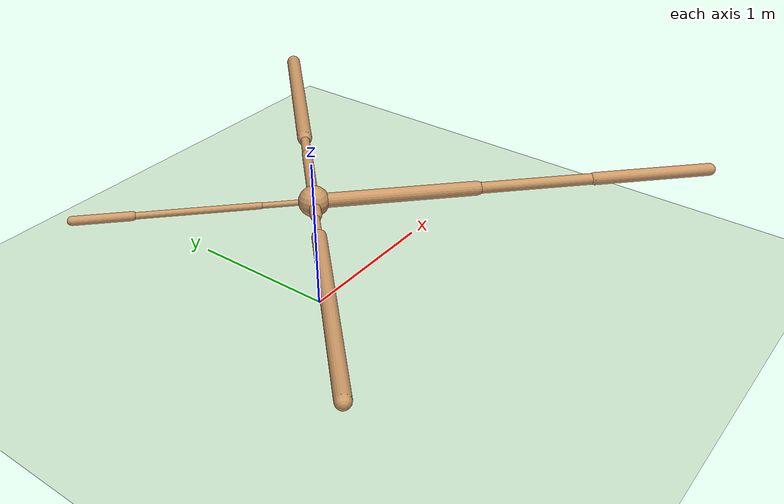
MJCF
<mujoco model="ant">
  <compiler angle="degree" coordinate="local" inertiafromgeom="true" />
  <option integrator="RK4" timestep="0.01" />
  <custom>
    <numeric data="0.0 0.0 0.55 1.0 0.0 0.0 0.0 0.0 1.0 0.0 -1.0 0.0 -1.0 0.0 1.0" name="init_qpos" />
  </custom>
  <default>
    <joint armature="1" damping="1" limited="true" />
    <geom conaffinity="0" condim="3" density="5.0" friction="1 0.5 0.5" margin="0.01" rgba="0.8 0.6 0.4 1" />
  </default>
  <asset>
    <texture builtin="gradient" height="100" rgb1="1 1 1" rgb2="0 0 0" type="skybox" width="100" />
    <texture builtin="flat" height="1278" mark="cross" markrgb="1 1 1" name="texgeom" random="0.01" rgb1="0.8 0.6 0.4" rgb2="0.8 0.6 0.4" type="cube" width="127" />
    <texture builtin="checker" height="100" name="texplane" rgb1="0 0 0" rgb2="0.8 0.8 0.8" type="2d" width="100" />
    <material name="MatPlane" reflectance="0.5" shininess="1" specular="1" texrepeat="60 60" texture="texplane" />
    <material name="geom" texture="texgeom" texuniform="true" />
  </asset>
  <worldbody>
    <light cutoff="100" diffuse="1 1 1" dir="-0 0 -1.3" directional="true" exponent="1" pos="0 0 1.3" specular=".1 .1 .1" />
    <geom conaffinity="1" condim="3" material="MatPlane" name="floor" pos="0 0 0" rgba="0.8 0.9 0.8 1" size="40 40 40" type="plane" />
    <body name="torso" pos="0 0 0.75">
      <camera name="track" mode="trackcom" pos="0 -11 5" xyaxes="1 0 0 0 0.5 1" />
      <geom name="torso_geom" pos="0 0 0" size="0.09444565325975418" type="sphere" />
      <joint armature="0" damping="0" limited="false" margin="0.01" name="root" pos="0 0 0" type="free" />
      <body name="front_left_leg" pos="0 0 0">
        <geom fromto="0 0 0 0.4205937385559082 0.4205937385559082 0" name="aux_1_geom" size="0.03264208137989044" type="capsule" />
        <body name="aux_1" pos="0.4205937385559082 0.4205937385559082 0">
          <joint axis="0 0 1" name="hip_1" pos="0.0 0.0 0.0" range="-30 30" type="hinge" />
          <geom fromto="0 0 0 0.16213096678256989 0.16213096678256989 0" name="left_leg_geom" size="0.029518768191337585" type="capsule" />
          <body name="left_leg_geom_aux" pos="0.16213096678256989 0.16213096678256989 0">
            <joint axis="-1 1 0" name="ankle_1" pos="0.0 0.0 0.0" range="30 70" type="hinge" />
            <geom fromto="0 0 0 0.9259011745452881 0.9259011745452881 0" name="left_ankle_geom" size="0.04832826554775238" type="capsule" />
          </body>
        </body>
      </body>
      <body name="front_right_leg" pos="0 0 0">
        <geom fromto="0 0 0 -0.22296716272830963 0.22296716272830963 0" name="aux_2_geom" size="0.017464034259319305" type="capsule" />
        <body name="aux_2" pos="-0.22296716272830963 0.22296716272830963 0">
          <joint axis="0 0 1" name="hip_2" pos="0.0 0.0 0.0" range="-30 30" type="hinge" />
          <geom fromto="0 0 0 -0.5216506123542786 0.5216506123542786 0" name="right_leg_geom" size="0.020247742533683777" type="capsule" />
          <body name="right_leg_geom_aux" pos="-0.5216506123542786 0.5216506123542786 0">
            <joint axis="1 1 0" name="ankle_2" pos="0.0 0.0 0.0" range="-70 -30" type="hinge" />
            <geom fromto="0 0 0 -0.2405577301979065 0.2405577301979065 0" name="right_ankle_geom" size="0.02767828106880188" type="capsule" />
          </body>
        </body>
      </body>
      <body name="back_leg" pos="0 0 0">
        <geom fromto="0 0 0 -0.1155712902545929 -0.1155712902545929 0" name="aux_3_geom" size="0.03521960973739624" type="capsule" />
        <body name="aux_3" pos="-0.1155712902545929 -0.1155712902545929 0">
          <joint axis="0 0 1" name="hip_3" pos="0.0 0.0 0.0" range="-30 30" type="hinge" />
          <geom fromto="0 0 0 -0.15950289368629456 -0.15950289368629456 0" name="back_leg_geom" size="0.019574755802750587" type="capsule" />
          <body name="back_leg_geom_aux" pos="-0.15950289368629456 -0.15950289368629456 0">
            <joint axis="-1 1 0" name="ankle_3" pos="0.0 0.0 0.0" range="-70 -30" type="hinge" />
            <geom fromto="0 0 0 -0.9474533796310425 -0.9474533796310425 0" name="third_ankle_geom" size="0.04314853623509407" type="capsule" />
          </body>
        </body>
      </body>
      <body name="right_back_leg" pos="0 0 0">
        <geom fromto="0 0 0 0.7015469074249268 -0.7015469074249268 0" name="aux_4_geom" size="0.044345952570438385" type="capsule" />
        <body name="aux_4" pos="0.7015469074249268 -0.7015469074249268 0">
          <joint axis="0 0 1" name="hip_4" pos="0.0 0.0 0.0" range="-30 30" type="hinge" />
          <geom fromto="0 0 0 0.5262964963912964 -0.5262964963912964 0" name="rightback_leg_geom" size="0.03479980677366257" type="capsule" />
          <body name="rightback_leg_geom_aux" pos="0.5262964963912964 -0.5262964963912964 0">
            <joint axis="1 1 0" name="ankle_4" pos="0.0 0.0 0.0" range="30 70" type="hinge" />
            <geom fromto="0 0 0 0.5327996015548706 -0.5327996015548706 0" name="fourth_ankle_geom" size="0.039370179176330566" type="capsule" />
          </body>
        </body>
      </body>
    </body>
  </worldbody>
  <actuator>
    <motor ctrllimited="true" ctrlrange="-1.0 1.0" joint="hip_4" gear="150" />
    <motor ctrllimited="true" ctrlrange="-1.0 1.0" joint="ankle_4" gear="150" />
    <motor ctrllimited="true" ctrlrange="-1.0 1.0" joint="hip_1" gear="150" />
    <motor ctrllimited="true" ctrlrange="-1.0 1.0" joint="ankle_1" gear="150" />
    <motor ctrllimited="true" ctrlrange="-1.0 1.0" joint="hip_2" gear="150" />
    <motor ctrllimited="true" ctrlrange="-1.0 1.0" joint="ankle_2" gear="150" />
    <motor ctrllimited="true" ctrlrange="-1.0 1.0" joint="hip_3" gear="150" />
    <motor ctrllimited="true" ctrlrange="-1.0 1.0" joint="ankle_3" gear="150" />
  </actuator>
</mujoco>
